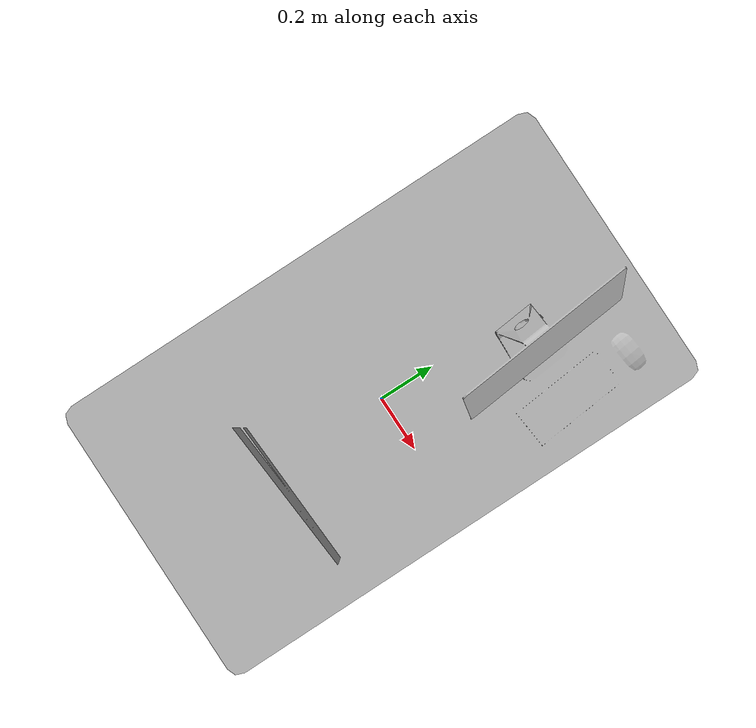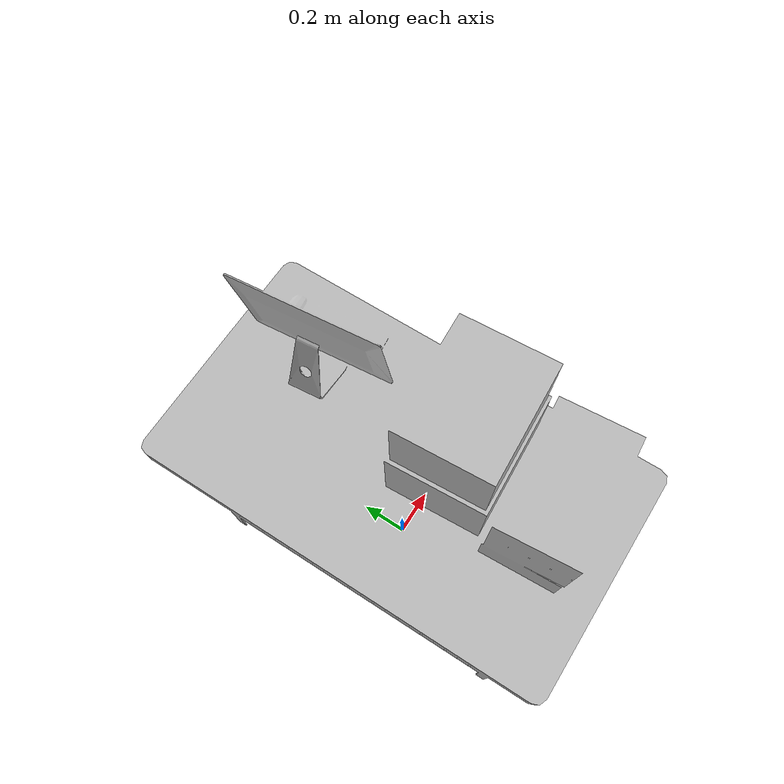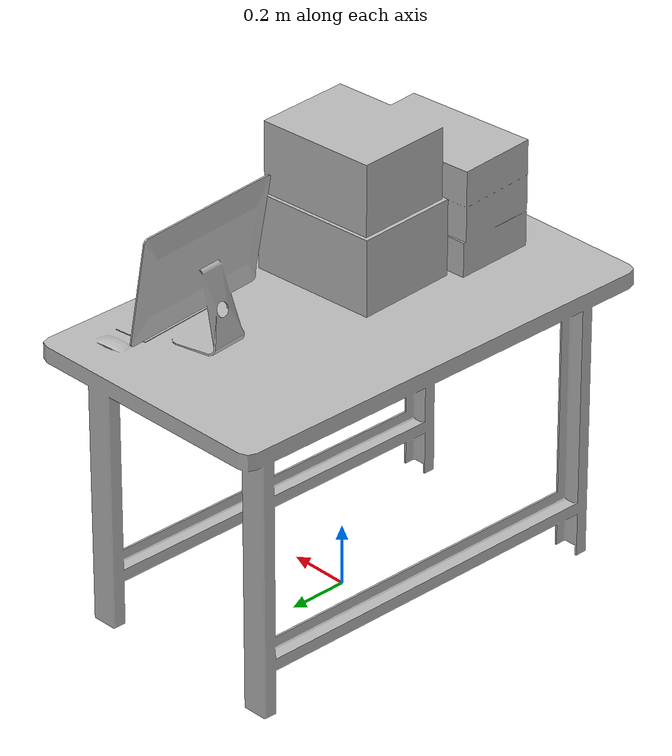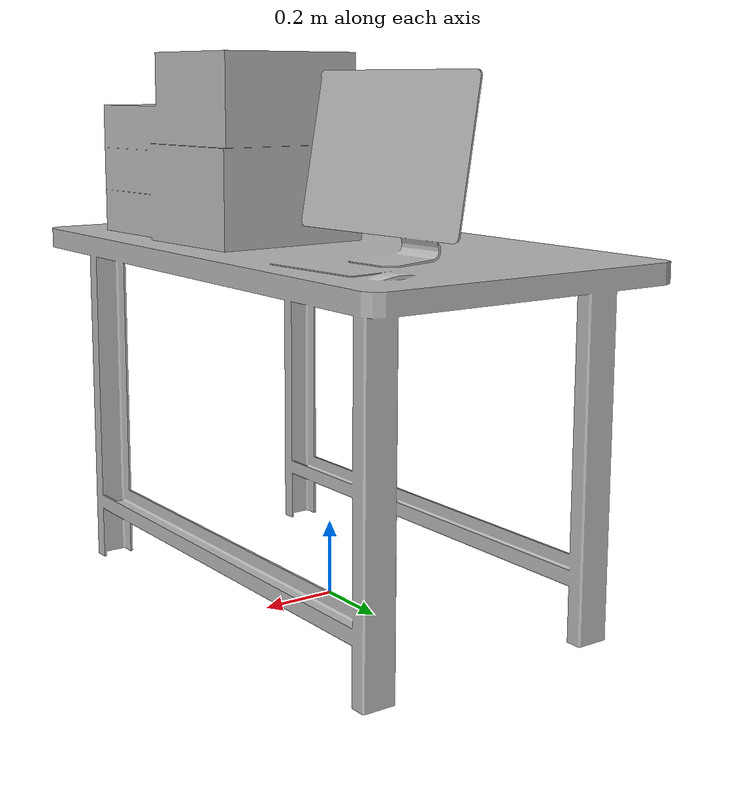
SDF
<?xml version="1.0" ?>
<sdf version="1.6">
  <model name="aws_robomaker_warehouse_DeskC_01_classic">
    <link name="link">
      <inertial>
        <mass>1</mass>
        <inertia>
          <ixx>0.608</ixx>
          <ixy>0</ixy>
          <ixz>0</ixz>
          <iyy>0.476</iyy>
          <iyz>0</iyz>
          <izz>0.542</izz>
        </inertia>
      </inertial>
      <collision name="collision">
        <geometry>
          <mesh>
            <uri>model://aws_robomaker_warehouse_DeskC_01_classic/meshes/aws_robomaker_warehouse_DeskC_01_classic_collision.DAE</uri>
            <scale>1 1 1</scale>
          </mesh>
        </geometry>
		<surface>
          <friction>
            <ode>
              <mu>0.3</mu>
              <mu2>0.3</mu2>
              <fdir1>0 0 0</fdir1>
              <slip1>0</slip1>
              <slip2>0</slip2>
            </ode>
        </friction>
          </surface>
      </collision>
      <visual name="visual">
	    <geometry>
          <mesh>
            <uri>model://aws_robomaker_warehouse_DeskC_01_classic/meshes/aws_robomaker_warehouse_DeskC_01_classic_visual.DAE</uri>
          </mesh>
        </geometry>
      <meta> <layer> 1 </layer></meta>
</visual>
    </link>
<static>1</static>
  </model>
</sdf>
